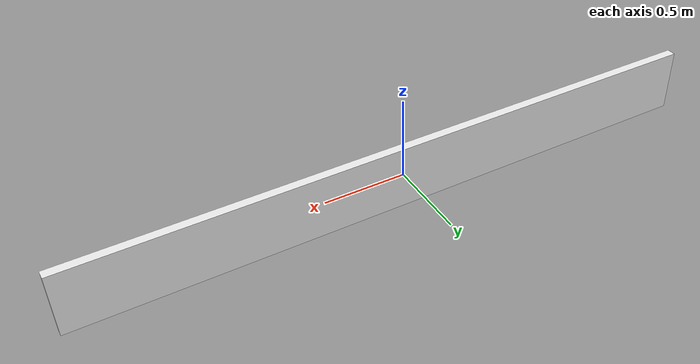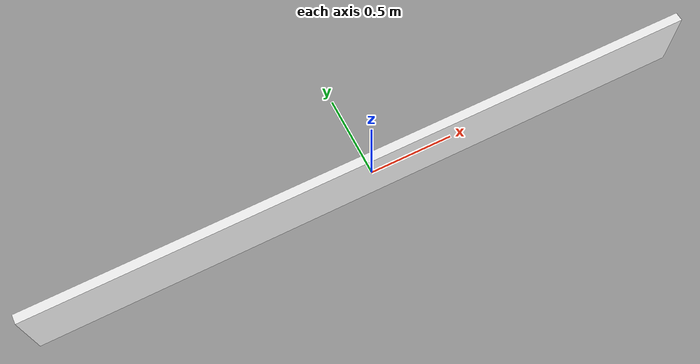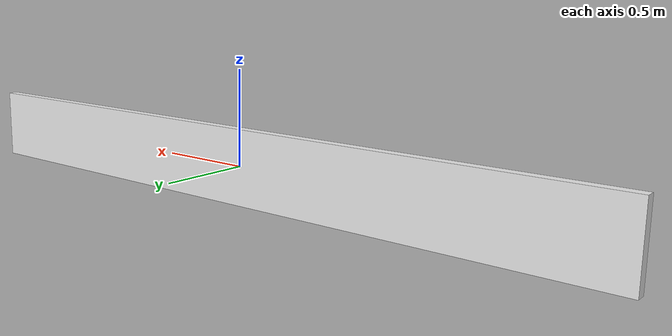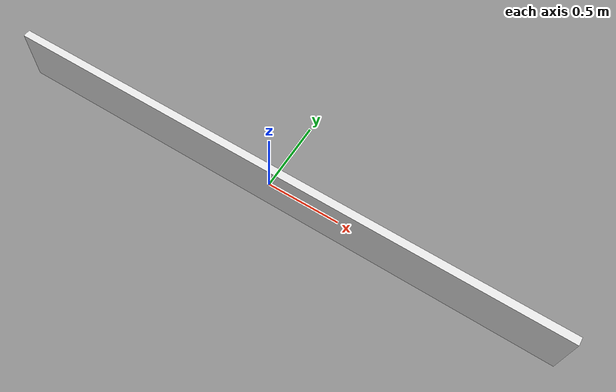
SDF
<?xml version="1.0" ?>
<sdf version="1.4">
    <model name='wall'>
      <link name='link'>
        <inertial>
          <mass>50</mass>
          <inertia>
            <ixx>1</ixx>
            <ixy>0</ixy>
            <ixz>0</ixz>
            <iyy>1</iyy>
            <iyz>0</iyz>
            <izz>1</izz>
          </inertia>
        </inertial>
        <visual name='wall_visual'>
          <geometry>
            <box>
              <size>4.0 0.055 0.4</size>
            </box>
          </geometry>
          <material>
            <script>
              <uri>model://base_materials/wall/scripts</uri>
              <uri>model://base_materials/wall/textures</uri>
              <name>wall/white_noise</name>
            </script>
          </material>
        </visual>
        <collision name='wall_collision'>
          <geometry>
            <box>
              <size>4.0 0.055 0.4</size>
            </box>
          </geometry>
          <max_contacts>10</max_contacts>
          <surface>
            <bounce/>
            <friction>
              <ode/>
            </friction>
            <contact>
              <ode/>
            </contact>
          </surface>
        </collision>

        <velocity_decay>
          <linear>0</linear>
          <angular>0</angular>
        </velocity_decay>
        <self_collide>0</self_collide>
        <kinematic>0</kinematic>
        <gravity>1</gravity>
      </link>
      <static>1</static>
    </model>
</sdf>
